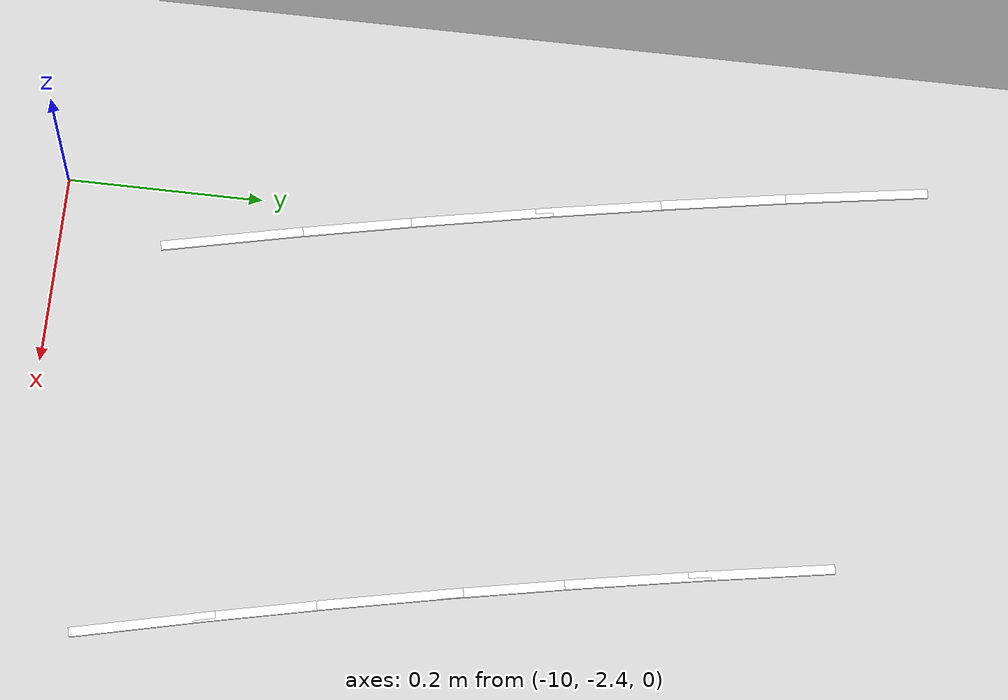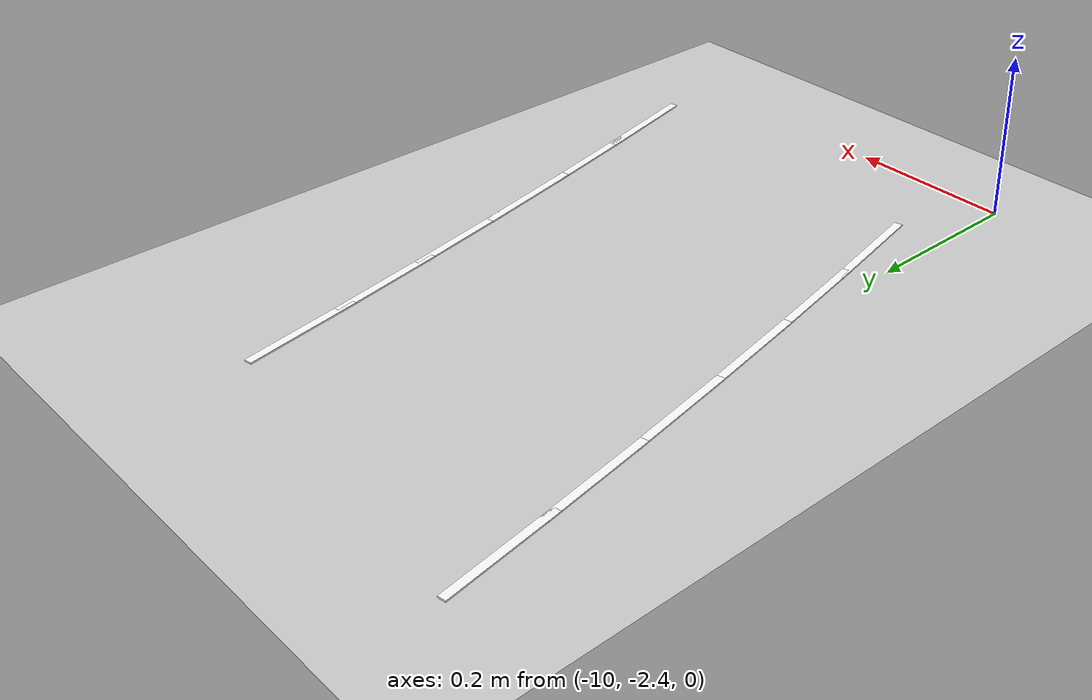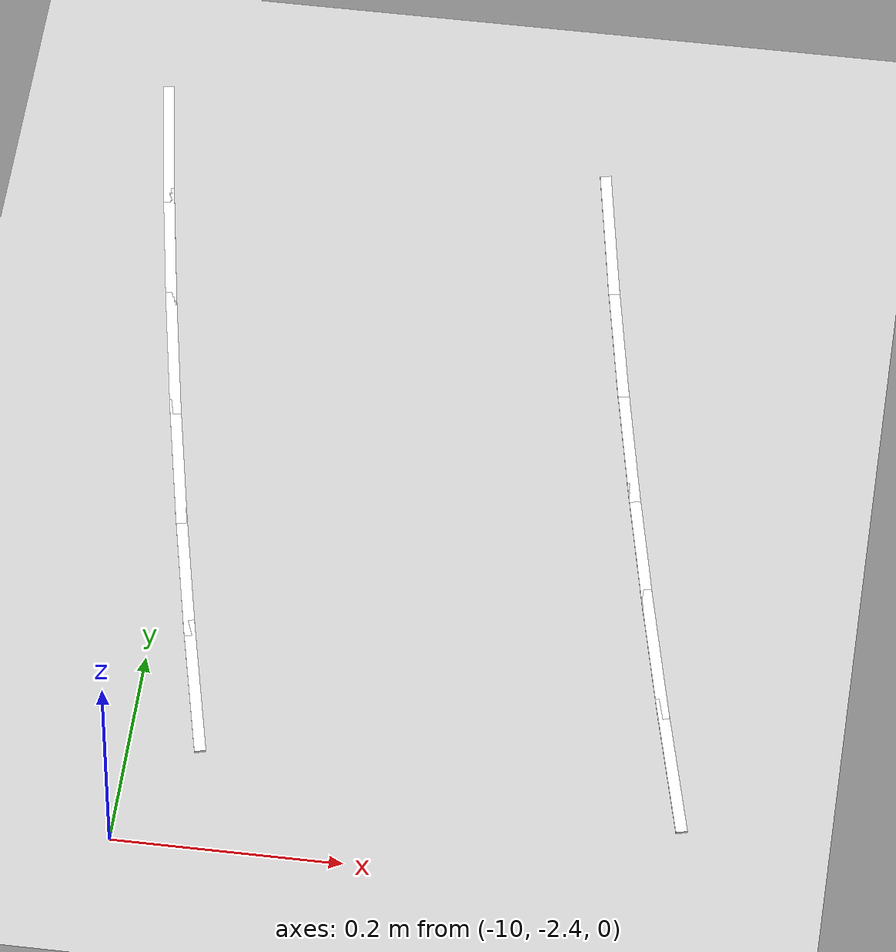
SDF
<sdf version="1.7">
 <world name="default">
  <model name="ground_plane">
   <static>1</static>
   <link name="link">
    <collision name="collision">
     <geometry><plane><normal>0 0 1</normal><size>100 100</size></plane></geometry>
     <surface>
      <contact><collide_bitmask>65535</collide_bitmask></contact>
      <friction><ode><mu>100</mu><mu2>50</mu2></ode></friction>
     </surface>
    </collision>
    <visual name="visual">
     <cast_shadows>0</cast_shadows>
     <geometry><plane><normal>0 0 1</normal><size>100 100</size></plane></geometry>
     <material>
      <script><uri>file://media/materials/scripts/gazebo.material</uri><name>Gazebo/Grey</name></script>
     </material>
    </visual>
   </link>
  </model>
  <model name="lane_line_right_262">
   <static>1</static>
   <link name="link">
    <pose>0 0 -0.004 0 -0 0</pose>
    <visual name="visual">
     <geometry><box><size>0.1457 0.01 0.01</size></box></geometry>
     <material><ambient>1 1 1 1</ambient><diffuse>1 1 1 1</diffuse></material>
    </visual>
    <collision name="collision"><geometry><box><size>0.1457 0.01 0.01</size></box></geometry></collision>
   </link>
   <pose>-10.0742 -1.5956 0 0 0 -1.41372</pose>
  </model>
  <model name="lane_line_left_263">
   <static>1</static>
   <link name="link">
    <pose>0 0 -0.004 0 -0 0</pose>
    <visual name="visual">
     <geometry><box><size>0.1457 0.01 0.01</size></box></geometry>
     <material><ambient>1 1 1 1</ambient><diffuse>1 1 1 1</diffuse></material>
    </visual>
    <collision name="collision"><geometry><box><size>0.1457 0.01 0.01</size></box></geometry></collision>
   </link>
   <pose>-9.65912 -1.65453 0 0 0 -1.40115</pose>
  </model>
  <model name="lane_line_right_263">
   <static>1</static>
   <link name="link">
    <pose>0 0 -0.004 0 -0 0</pose>
    <visual name="visual">
     <geometry><box><size>0.1457 0.01 0.01</size></box></geometry>
     <material><ambient>1 1 1 1</ambient><diffuse>1 1 1 1</diffuse></material>
    </visual>
    <collision name="collision"><geometry><box><size>0.1457 0.01 0.01</size></box></geometry></collision>
   </link>
   <pose>-10.0534 -1.72207 0 0 0 -1.40115</pose>
  </model>
  <model name="lane_line_left_264">
   <static>1</static>
   <link name="link">
    <pose>0 0 -0.004 0 -0 0</pose>
    <visual name="visual">
     <geometry><box><size>0.1457 0.01 0.01</size></box></geometry>
     <material><ambient>1 1 1 1</ambient><diffuse>1 1 1 1</diffuse></material>
    </visual>
    <collision name="collision"><geometry><box><size>0.1457 0.01 0.01</size></box></geometry></collision>
   </link>
   <pose>-9.63757 -1.77578 0 0 0 -1.38858</pose>
  </model>
  <model name="lane_line_right_264">
   <static>1</static>
   <link name="link">
    <pose>0 0 -0.004 0 -0 0</pose>
    <visual name="visual">
     <geometry><box><size>0.1457 0.01 0.01</size></box></geometry>
     <material><ambient>1 1 1 1</ambient><diffuse>1 1 1 1</diffuse></material>
    </visual>
    <collision name="collision"><geometry><box><size>0.1457 0.01 0.01</size></box></geometry></collision>
   </link>
   <pose>-10.0309 -1.84826 0 0 0 -1.38858</pose>
  </model>
  <model name="lane_line_left_265">
   <static>1</static>
   <link name="link">
    <pose>0 0 -0.004 0 -0 0</pose>
    <visual name="visual">
     <geometry><box><size>0.1457 0.01 0.01</size></box></geometry>
     <material><ambient>1 1 1 1</ambient><diffuse>1 1 1 1</diffuse></material>
    </visual>
    <collision name="collision"><geometry><box><size>0.1457 0.01 0.01</size></box></geometry></collision>
   </link>
   <pose>-9.61449 -1.89675 0 0 0 -1.37602</pose>
  </model>
  <model name="lane_line_right_265">
   <static>1</static>
   <link name="link">
    <pose>0 0 -0.004 0 -0 0</pose>
    <visual name="visual">
     <geometry><box><size>0.1457 0.01 0.01</size></box></geometry>
     <material><ambient>1 1 1 1</ambient><diffuse>1 1 1 1</diffuse></material>
    </visual>
    <collision name="collision"><geometry><box><size>0.1457 0.01 0.01</size></box></geometry></collision>
   </link>
   <pose>-10.0069 -1.97417 0 0 0 -1.37602</pose>
  </model>
  <model name="lane_line_left_266">
   <static>1</static>
   <link name="link">
    <pose>0 0 -0.004 0 -0 0</pose>
    <visual name="visual">
     <geometry><box><size>0.1457 0.01 0.01</size></box></geometry>
     <material><ambient>1 1 1 1</ambient><diffuse>1 1 1 1</diffuse></material>
    </visual>
    <collision name="collision"><geometry><box><size>0.1457 0.01 0.01</size></box></geometry></collision>
   </link>
   <pose>-9.5899 -2.01741 0 0 0 -1.36345</pose>
  </model>
  <model name="lane_line_right_266">
   <static>1</static>
   <link name="link">
    <pose>0 0 -0.004 0 -0 0</pose>
    <visual name="visual">
     <geometry><box><size>0.1457 0.01 0.01</size></box></geometry>
     <material><ambient>1 1 1 1</ambient><diffuse>1 1 1 1</diffuse></material>
    </visual>
    <collision name="collision"><geometry><box><size>0.1457 0.01 0.01</size></box></geometry></collision>
   </link>
   <pose>-9.98133 -2.09976 0 0 0 -1.36345</pose>
  </model>
  <model name="lane_line_left_267">
   <static>1</static>
   <link name="link">
    <pose>0 0 -0.004 0 -0 0</pose>
    <visual name="visual">
     <geometry><box><size>0.1457 0.01 0.01</size></box></geometry>
     <material><ambient>1 1 1 1</ambient><diffuse>1 1 1 1</diffuse></material>
    </visual>
    <collision name="collision"><geometry><box><size>0.1457 0.01 0.01</size></box></geometry></collision>
   </link>
   <pose>-9.56379 -2.13776 0 0 0 -1.35088</pose>
  </model>
  <model name="lane_line_right_267">
   <static>1</static>
   <link name="link">
    <pose>0 0 -0.004 0 -0 0</pose>
    <visual name="visual">
     <geometry><box><size>0.1457 0.01 0.01</size></box></geometry>
     <material><ambient>1 1 1 1</ambient><diffuse>1 1 1 1</diffuse></material>
    </visual>
    <collision name="collision"><geometry><box><size>0.1457 0.01 0.01</size></box></geometry></collision>
   </link>
   <pose>-9.95416 -2.22502 0 0 0 -1.35088</pose>
  </model>
  <model name="lane_line_left_268">
   <static>1</static>
   <link name="link">
    <pose>0 0 -0.004 0 -0 0</pose>
    <visual name="visual">
     <geometry><box><size>0.1457 0.01 0.01</size></box></geometry>
     <material><ambient>1 1 1 1</ambient><diffuse>1 1 1 1</diffuse></material>
    </visual>
    <collision name="collision"><geometry><box><size>0.1457 0.01 0.01</size></box></geometry></collision>
   </link>
   <pose>-9.53617 -2.25777 0 0 0 -1.33832</pose>
  </model>
 </world>
</sdf>
